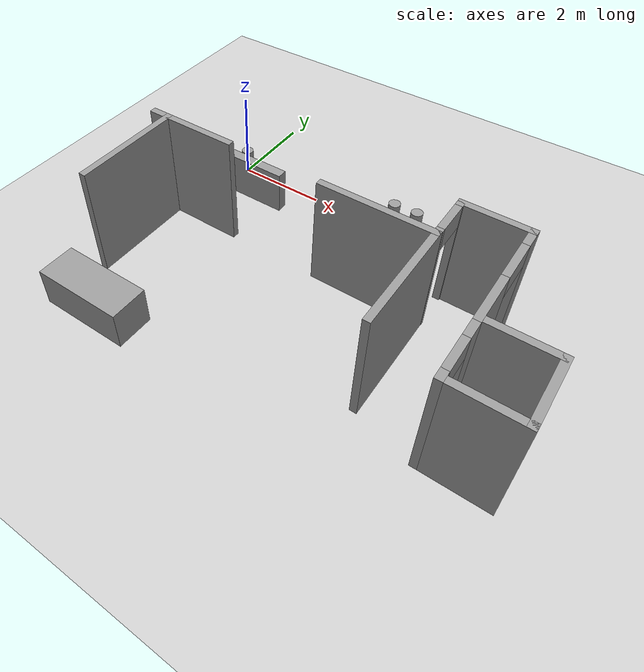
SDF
<sdf version="1.6">
 <world name="default">
  <model name="ground_plane">
   <static>1</static>
   <link name="link">
    <collision name="collision">
     <geometry><plane><normal>0 0 1</normal><size>100 100</size></plane></geometry>
     <surface><friction><ode><mu>100</mu><mu2>50</mu2></ode></friction></surface>
    </collision>
    <visual name="visual">
     <cast_shadows>0</cast_shadows>
     <geometry><plane><normal>0 0 1</normal><size>100 100</size></plane></geometry>
     <material>
      <script><uri>file://media/materials/scripts/gazebo.material</uri><name>Gazebo/Grey</name></script>
     </material>
    </visual>
   </link>
  </model>
  <model name="cma_parede_t">
   <pose>0.159955 -3.24016 0 0 -0 0</pose>
   <link name="Wall_15">
    <collision name="Wall_15_Collision">
     <geometry><box><size>2.5 0.15 2.5</size></box></geometry>
     <pose>0 0 1.25 0 -0 0</pose>
    </collision>
    <visual name="Wall_15_Visual">
     <pose>0 0 1.25 0 -0 0</pose>
     <geometry><box><size>2.5 0.15 2.5</size></box></geometry>
     <material>
      <script><uri>file://media/materials/scripts/gazebo.material</uri><name>Gazebo/Grey</name></script>
      <ambient>1 1 1 1</ambient>
     </material>
    </visual>
    <pose>-0.625 0 0 0 -0 1.5708</pose>
   </link>
   <link name="Wall_16">
    <collision name="Wall_16_Collision">
     <geometry><box><size>0.5 0.15 2.5</size></box></geometry>
     <pose>0 0 1.25 0 -0 0</pose>
    </collision>
    <visual name="Wall_16_Visual">
     <pose>0 0 1.25 0 -0 0</pose>
     <geometry><box><size>0.5 0.15 2.5</size></box></geometry>
     <material>
      <script><uri>file://media/materials/scripts/gazebo.material</uri><name>Gazebo/Grey</name></script>
      <ambient>1 1 1 1</ambient>
     </material>
    </visual>
    <pose>-0.8 1.175 0 0 -0 3.14159</pose>
   </link>
   <link name="Wall_18">
    <collision name="Wall_18_Collision">
     <geometry><box><size>1.75 0.15 2.5</size></box></geometry>
     <pose>0 0 1.25 0 -0 0</pose>
    </collision>
    <visual name="Wall_18_Visual">
     <pose>0 0 1.25 0 -0 0</pose>
     <geometry><box><size>1.75 0.15 2.5</size></box></geometry>
     <material>
      <script><uri>file://media/materials/scripts/gazebo.material</uri><name>Gazebo/Grey</name></script>
      <ambient>1 1 1 1</ambient>
     </material>
    </visual>
    <pose>0.175 1.175 0 0 -0 0</pose>
   </link>
   <static>1</static>
  </model>
  <model name="cma_lavabo">
   <pose>7.72297 -4.09302 0 0 -0 0</pose>
   <link name="Wall_4">
    <pose>-0.675 0 0 0 -0 1.5708</pose>
    <visual name="Wall_4_Visual_0">
     <pose>-0.635 0 1.25 0 -0 0</pose>
     <geometry><box><size>0.23 0.15 2.5</size></box></geometry>
     <material>
      <script><uri>file://media/materials/scripts/gazebo.material</uri><name>Gazebo/Grey</name></script>
      <ambient>1 1 1 1</ambient>
     </material>
    </visual>
    <collision name="Wall_4_Collision_0">
     <geometry><box><size>0.23 0.15 2.5</size></box></geometry>
     <pose>-0.635 0 1.25 0 -0 0</pose>
    </collision>
    <visual name="Wall_4_Visual_1">
     <pose>0.48 0 1.25 0 -0 0</pose>
     <geometry><box><size>0.54 0.15 2.5</size></box></geometry>
     <material>
      <script><uri>file://media/materials/scripts/gazebo.material</uri><name>Gazebo/Grey</name></script>
      <ambient>1 1 1 1</ambient>
     </material>
    </visual>
    <collision name="Wall_4_Collision_1">
     <geometry><box><size>0.54 0.15 2.5</size></box></geometry>
     <pose>0.48 0 1.25 0 -0 0</pose>
    </collision>
    <visual name="Wall_4_Visual_2">
     <pose>-0.155 0 2.25 0 -0 0</pose>
     <geometry><box><size>0.73 0.15 0.5</size></box></geometry>
     <material>
      <script><uri>file://media/materials/scripts/gazebo.material</uri><name>Gazebo/Grey</name></script>
      <ambient>1 1 1 1</ambient>
     </material>
    </visual>
    <collision name="Wall_4_Collision_2">
     <geometry><box><size>0.73 0.15 0.5</size></box></geometry>
     <pose>-0.155 0 2.25 0 -0 0</pose>
    </collision>
   </link>
   <link name="Wall_5">
    <collision name="Wall_5_Collision">
     <geometry><box><size>1.5 0.15 2.5</size></box></geometry>
     <pose>0 0 1.25 0 -0 0</pose>
    </collision>
    <visual name="Wall_5_Visual">
     <pose>0 0 1.25 0 -0 0</pose>
     <geometry><box><size>1.5 0.15 2.5</size></box></geometry>
     <material>
      <script><uri>file://media/materials/scripts/gazebo.material</uri><name>Gazebo/Grey</name></script>
      <ambient>1 1 1 1</ambient>
     </material>
    </visual>
    <pose>0 0.675 0 0 -0 0</pose>
   </link>
   <link name="Wall_6">
    <collision name="Wall_6_Collision">
     <geometry><box><size>1.5 0.15 2.5</size></box></geometry>
     <pose>0 0 1.25 0 -0 0</pose>
    </collision>
    <visual name="Wall_6_Visual">
     <pose>0 0 1.25 0 -0 0</pose>
     <geometry><box><size>1.5 0.15 2.5</size></box></geometry>
     <material>
      <script><uri>file://media/materials/scripts/gazebo.material</uri><name>Gazebo/Grey</name></script>
      <ambient>1 1 1 1</ambient>
     </material>
    </visual>
    <pose>0.675 0 0 0 0 -1.5708</pose>
   </link>
   <link name="Wall_7">
    <collision name="Wall_7_Collision">
     <geometry><box><size>1.5 0.15 2.5</size></box></geometry>
     <pose>0 0 1.25 0 -0 0</pose>
    </collision>
    <visual name="Wall_7_Visual">
     <pose>0 0 1.25 0 -0 0</pose>
     <geometry><box><size>1.5 0.15 2.5</size></box></geometry>
     <material>
      <script><uri>file://media/materials/scripts/gazebo.material</uri><name>Gazebo/Grey</name></script>
      <ambient>1 1 1 1</ambient>
     </material>
    </visual>
    <pose>0 -0.675 0 0 -0 3.14159</pose>
   </link>
   <static>1</static>
  </model>
  <model name="cma_L2">
   <pose>4.51683 -3.24587 0 0 -0 0</pose>
   <link name="Wall_10">
    <collision name="Wall_10_Collision">
     <geometry><box><size>2.5 0.15 2.5</size></box></geometry>
     <pose>0 0 1.25 0 -0 0</pose>
    </collision>
    <visual name="Wall_10_Visual">
     <pose>0 0 1.25 0 -0 0</pose>
     <geometry><box><size>2.5 0.15 2.5</size></box></geometry>
     <material>
      <script><uri>file://media/materials/scripts/gazebo.material</uri><name>Gazebo/Grey</name></script>
      <ambient>1 1 1 1</ambient>
     </material>
    </visual>
    <pose>1.175 0 0 0 0 -1.5708</pose>
   </link>
   <link name="Wall_9">
    <collision name="Wall_9_Collision">
     <geometry><box><size>2.5 0.15 2.5</size></box></geometry>
     <pose>0 0 1.25 0 -0 0</pose>
    </collision>
    <visual name="Wall_9_Visual">
     <pose>0 0 1.25 0 -0 0</pose>
     <geometry><box><size>2.5 0.15 2.5</size></box></geometry>
     <material>
      <script><uri>file://media/materials/scripts/gazebo.material</uri><name>Gazebo/Grey</name></script>
      <ambient>1 1 1 1</ambient>
     </material>
    </visual>
    <pose>0 1.175 0 0 -0 0</pose>
   </link>
   <static>1</static>
  </model>
  <model name="cma_L3">
   <pose>6.37221 -2.26022 0 0 -0 0</pose>
   <link name="Wall_12">
    <pose>-0.675 0.75 0 0 -0 1.5708</pose>
    <visual name="Wall_12_Visual_0">
     <pose>-0.46 0 1.25 0 -0 0</pose>
     <geometry><box><size>0.08 0.15 2.5</size></box></geometry>
     <material>
      <script><uri>file://media/materials/scripts/gazebo.material</uri><name>Gazebo/Grey</name></script>
      <ambient>1 1 1 1</ambient>
     </material>
    </visual>
    <collision name="Wall_12_Collision_0">
     <geometry><box><size>0.08 0.15 2.5</size></box></geometry>
     <pose>-0.46 0 1.25 0 -0 0</pose>
    </collision>
    <visual name="Wall_12_Visual_1">
     <pose>0.405 0 1.25 0 -0 0</pose>
     <geometry><box><size>0.19 0.15 2.5</size></box></geometry>
     <material>
      <script><uri>file://media/materials/scripts/gazebo.material</uri><name>Gazebo/Grey</name></script>
      <ambient>1 1 1 1</ambient>
     </material>
    </visual>
    <collision name="Wall_12_Collision_1">
     <geometry><box><size>0.19 0.15 2.5</size></box></geometry>
     <pose>0.405 0 1.25 0 -0 0</pose>
    </collision>
    <visual name="Wall_12_Visual_2">
     <pose>-0.055 0 2.25 0 -0 0</pose>
     <geometry><box><size>0.73 0.15 0.5</size></box></geometry>
     <material>
      <script><uri>file://media/materials/scripts/gazebo.material</uri><name>Gazebo/Grey</name></script>
      <ambient>1 1 1 1</ambient>
     </material>
    </visual>
    <collision name="Wall_12_Collision_2">
     <geometry><box><size>0.73 0.15 0.5</size></box></geometry>
     <pose>-0.055 0 2.25 0 -0 0</pose>
    </collision>
   </link>
   <link name="Wall_13">
    <collision name="Wall_13_Collision">
     <geometry><box><size>1.5 0.15 2.5</size></box></geometry>
     <pose>0 0 1.25 0 -0 0</pose>
    </collision>
    <visual name="Wall_13_Visual">
     <pose>0 0 1.25 0 -0 0</pose>
     <geometry><box><size>1.5 0.15 2.5</size></box></geometry>
     <material>
      <script><uri>file://media/materials/scripts/gazebo.material</uri><name>Gazebo/Grey</name></script>
      <ambient>1 1 1 1</ambient>
     </material>
    </visual>
    <pose>0 1.175 0 0 -0 0</pose>
   </link>
   <link name="Wall_14">
    <pose>0.675 0 0 0 0 -1.5708</pose>
    <visual name="Wall_14_Visual_0">
     <pose>-1.0175 0 1.25 0 -0 0</pose>
     <geometry><box><size>0.465 0.15 2.5</size></box></geometry>
     <material>
      <script><uri>file://media/materials/scripts/gazebo.material</uri><name>Gazebo/Grey</name></script>
      <ambient>1 1 1 1</ambient>
     </material>
    </visual>
    <collision name="Wall_14_Collision_0">
     <geometry><box><size>0.465 0.15 2.5</size></box></geometry>
     <pose>-1.0175 0 1.25 0 -0 0</pose>
    </collision>
    <visual name="Wall_14_Visual_1">
     <pose>0.6825 0 1.25 0 -0 0</pose>
     <geometry><box><size>1.135 0.15 2.5</size></box></geometry>
     <material>
      <script><uri>file://media/materials/scripts/gazebo.material</uri><name>Gazebo/Grey</name></script>
      <ambient>1 1 1 1</ambient>
     </material>
    </visual>
    <collision name="Wall_14_Collision_1">
     <geometry><box><size>1.135 0.15 2.5</size></box></geometry>
     <pose>0.6825 0 1.25 0 -0 0</pose>
    </collision>
    <visual name="Wall_14_Visual_2">
     <pose>-0.335 0 2.25 0 -0 0</pose>
     <geometry><box><size>0.9 0.15 0.5</size></box></geometry>
     <material>
      <script><uri>file://media/materials/scripts/gazebo.material</uri><name>Gazebo/Grey</name></script>
      <ambient>1 1 1 1</ambient>
     </material>
    </visual>
    <collision name="Wall_14_Collision_2">
     <geometry><box><size>0.9 0.15 0.5</size></box></geometry>
     <pose>-0.335 0 2.25 0 -0 0</pose>
    </collision>
   </link>
   <static>1</static>
  </model>
  <model name="cma_armario">
   <link name="link_0">
    <pose>1.32157 0.885178 0.5 0 -0 0</pose>
    <inertial>
     <mass>0.402376</mass>
     <inertia>
      <ixx>0.0353686</ixx>
      <ixy>0</ixy>
      <ixz>0</ixz>
      <iyy>0.132616</iyy>
      <iyz>0</iyz>
      <izz>0.100922</izz>
     </inertia>
    </inertial>
    <visual name="visual">
     <geometry><box><size>1.71877 0.234069 1</size></box></geometry>
     <material>
      <lighting>1</lighting>
      <script><uri>file://media/materials/scripts/gazebo.material</uri><name>Gazebo/Grey</name></script>
      <ambient>0.3 0.3 0.3 1</ambient>
      <diffuse>0.7 0.7 0.7 1</diffuse>
      <specular>0.01 0.01 0.01 1</specular>
      <emissive>0 0 0 1</emissive>
     </material>
    </visual>
    <collision name="collision">
     <geometry><box><size>1.71877 0.234069 1</size></box></geometry>
     <surface>
      <friction>
       <ode><mu>1</mu><mu2>1</mu2><fdir1>0 0 0</fdir1><slip1>0</slip1><slip2>0</slip2></ode>
       <torsional>
        <coefficient>1</coefficient>
        <patch_radius>0</patch_radius>
        <surface_radius>0</surface_radius>
        <use_patch_radius>1</use_patch_radius>
        <ode><slip>0</slip></ode>
       </torsional>
      </friction>
      <bounce><restitution_coefficient>0</restitution_coefficient><threshold>1e+06</threshold></bounce>
      <contact>
       <collide_without_contact>0</collide_without_contact>
       <collide_without_contact_bitmask>1</collide_without_contact_bitmask>
       <collide_bitmask>1</collide_bitmask>
       <ode>
        <soft_cfm>0</soft_cfm>
        <soft_erp>0.2</soft_erp>
        <kp>1e+13</kp>
        <kd>1</kd>
        <max_vel>0.01</max_vel>
        <min_depth>0</min_depth>
       </ode>
       <bullet>
        <split_impulse>1</split_impulse>
        <split_impulse_penetration_threshold>-0.01</split_impulse_penetration_threshold>
        <soft_cfm>0</soft_cfm>
        <soft_erp>0.2</soft_erp>
        <kp>1e+13</kp>
        <kd>1</kd>
       </bullet>
      </contact>
     </surface>
    </collision>
   </link>
   <static>0</static>
   <pose>-0.670301 -1.58199 0 0 0 -3.2e-05</pose>
  </model>
  <model name="cma_lixo">
   <link name="link_1">
    <pose>0.882962 1.81586 0.5 0 -0 0</pose>
    <inertial>
     <mass>0.0687644</mass>
     <inertia>
      <ixx>0.00602588</ixx>
      <ixy>0</ixy>
      <ixz>0</ixz>
      <iyy>0.00602588</iyy>
      <iyz>0</iyz>
      <izz>0.000591068</izz>
     </inertia>
    </inertial>
    <visual name="visual">
     <geometry><cylinder><radius>0.131112</radius><length>1</length></cylinder></geometry>
     <material>
      <lighting>1</lighting>
      <script><uri>file://media/materials/scripts/gazebo.material</uri><name>Gazebo/Grey</name></script>
      <ambient>0.3 0.3 0.3 1</ambient>
      <diffuse>0.7 0.7 0.7 1</diffuse>
      <specular>0.01 0.01 0.01 1</specular>
      <emissive>0 0 0 1</emissive>
     </material>
    </visual>
    <collision name="collision">
     <geometry><cylinder><radius>0.131112</radius><length>1</length></cylinder></geometry>
     <surface>
      <friction>
       <ode><mu>1</mu><mu2>1</mu2><fdir1>0 0 0</fdir1><slip1>0</slip1><slip2>0</slip2></ode>
       <torsional>
        <coefficient>1</coefficient>
        <patch_radius>0</patch_radius>
        <surface_radius>0</surface_radius>
        <use_patch_radius>1</use_patch_radius>
        <ode><slip>0</slip></ode>
       </torsional>
      </friction>
      <bounce><restitution_coefficient>0</restitution_coefficient><threshold>1e+06</threshold></bounce>
      <contact>
       <collide_without_contact>0</collide_without_contact>
       <collide_without_contact_bitmask>1</collide_without_contact_bitmask>
       <collide_bitmask>1</collide_bitmask>
       <ode>
        <soft_cfm>0</soft_cfm>
        <soft_erp>0.2</soft_erp>
        <kp>1e+13</kp>
        <kd>1</kd>
        <max_vel>0.01</max_vel>
        <min_depth>0</min_depth>
       </ode>
       <bullet>
        <split_impulse>1</split_impulse>
        <split_impulse_penetration_threshold>-0.01</split_impulse_penetration_threshold>
        <soft_cfm>0</soft_cfm>
        <soft_erp>0.2</soft_erp>
        <kp>1e+13</kp>
        <kd>1</kd>
       </bullet>
      </contact>
     </surface>
    </collision>
   </link>
   <static>0</static>
   <pose>-1.35785 -1.52544 -5e-06 0 0 -0.543097</pose>
  </model>
  <model name="cma_cama_s">
   <link name="link_0">
    <pose>-0 2e-06 0 0 -0 0</pose>
    <inertial>
     <mass>1.44546</mass>
     <inertia>
      <ixx>0.173816</ixx>
      <ixy>0</ixy>
      <ixz>0</ixz>
      <iyy>0.575223</iyy>
      <iyz>0</iyz>
      <izz>0.56746</izz>
     </inertia>
    </inertial>
    <visual name="visual">
     <geometry><box><size>2.0054 0.830227 0.868163</size></box></geometry>
     <material>
      <lighting>1</lighting>
      <script><uri>file://media/materials/scripts/gazebo.material</uri><name>Gazebo/Grey</name></script>
      <ambient>0.3 0.3 0.3 1</ambient>
      <diffuse>0.7 0.7 0.7 1</diffuse>
      <specular>0.01 0.01 0.01 1</specular>
      <emissive>0 0 0 1</emissive>
     </material>
    </visual>
    <collision name="collision">
     <geometry><box><size>2.0054 0.830227 0.868163</size></box></geometry>
     <surface>
      <friction>
       <ode><mu>1</mu><mu2>1</mu2><fdir1>0 0 0</fdir1><slip1>0</slip1><slip2>0</slip2></ode>
       <torsional>
        <coefficient>1</coefficient>
        <patch_radius>0</patch_radius>
        <surface_radius>0</surface_radius>
        <use_patch_radius>1</use_patch_radius>
        <ode><slip>0</slip></ode>
       </torsional>
      </friction>
      <bounce><restitution_coefficient>0</restitution_coefficient><threshold>1e+06</threshold></bounce>
      <contact>
       <collide_without_contact>0</collide_without_contact>
       <collide_without_contact_bitmask>1</collide_without_contact_bitmask>
       <collide_bitmask>1</collide_bitmask>
       <ode>
        <soft_cfm>0</soft_cfm>
        <soft_erp>0.2</soft_erp>
        <kp>1e+13</kp>
        <kd>1</kd>
        <max_vel>0.01</max_vel>
        <min_depth>0</min_depth>
       </ode>
       <bullet>
        <split_impulse>1</split_impulse>
        <split_impulse_penetration_threshold>-0.01</split_impulse_penetration_threshold>
        <soft_cfm>0</soft_cfm>
        <soft_erp>0.2</soft_erp>
        <kp>1e+13</kp>
        <kd>1</kd>
       </bullet>
      </contact>
     </surface>
    </collision>
   </link>
   <static>0</static>
   <pose>0.313462 -5.42014 0.434083 4e-06 -0 -2e-06</pose>
  </model>
  <model name="cma_barra_70cmV">
   <link name="link_2">
    <pose>0.076239 -1e-06 0 0 0 -1.5756</pose>
    <inertial>
     <mass>0.0631368</mass>
     <inertia>
      <ixx>0.00106542</ixx>
      <ixy>0</ixy>
      <ixz>0</ixz>
      <iyy>0.00284727</iyy>
      <iyz>0</iyz>
      <izz>0.0025815</izz>
     </inertia>
    </inertial>
    <visual name="visual">
     <geometry><box><size>0.643938 0.275728 0.355737</size></box></geometry>
     <material>
      <lighting>1</lighting>
      <script><uri>file://media/materials/scripts/gazebo.material</uri><name>Gazebo/Grey</name></script>
      <ambient>0.3 0.3 0.3 1</ambient>
      <diffuse>0.7 0.7 0.7 1</diffuse>
      <specular>0.01 0.01 0.01 1</specular>
      <emissive>0 0 0 1</emissive>
     </material>
    </visual>
    <collision name="collision">
     <geometry><box><size>0.643938 0.275728 0.355737</size></box></geometry>
     <surface>
      <friction>
       <ode><mu>1</mu><mu2>1</mu2><fdir1>0 0 0</fdir1><slip1>0</slip1><slip2>0</slip2></ode>
       <torsional>
        <coefficient>1</coefficient>
        <patch_radius>0</patch_radius>
        <surface_radius>0</surface_radius>
        <use_patch_radius>1</use_patch_radius>
        <ode><slip>0</slip></ode>
       </torsional>
      </friction>
      <bounce><restitution_coefficient>0</restitution_coefficient><threshold>1e+06</threshold></bounce>
      <contact>
       <collide_without_contact>0</collide_without_contact>
       <collide_without_contact_bitmask>1</collide_without_contact_bitmask>
       <collide_bitmask>1</collide_bitmask>
       <ode>
        <soft_cfm>0</soft_cfm>
        <soft_erp>0.2</soft_erp>
        <kp>1e+13</kp>
        <kd>1</kd>
        <max_vel>0.01</max_vel>
        <min_depth>0</min_depth>
       </ode>
       <bullet>
        <split_impulse>1</split_impulse>
        <split_impulse_penetration_threshold>-0.01</split_impulse_penetration_threshold>
        <soft_cfm>0</soft_cfm>
        <soft_erp>0.2</soft_erp>
        <kp>1e+13</kp>
        <kd>1</kd>
       </bullet>
      </contact>
     </surface>
    </collision>
   </link>
   <static>0</static>
   <pose>7.2952 -1.9239 0.177863 3e-06 -2.2e-05 -0.002234</pose>
  </model>
  <model name="cma_lixo_4">
   <link name="link_1">
    <pose>0.882962 1.81586 0.5 0 -0 0</pose>
    <inertial>
     <mass>0.0687644</mass>
     <inertia>
      <ixx>0.00602588</ixx>
      <ixy>0</ixy>
      <ixz>0</ixz>
      <iyy>0.00602588</iyy>
      <iyz>0</iyz>
      <izz>0.000591068</izz>
     </inertia>
    </inertial>
    <visual name="visual">
     <geometry><cylinder><radius>0.131112</radius><length>1</length></cylinder></geometry>
     <material>
      <lighting>1</lighting>
      <script><uri>file://media/materials/scripts/gazebo.material</uri><name>Gazebo/Grey</name></script>
      <ambient>0.3 0.3 0.3 1</ambient>
      <diffuse>0.7 0.7 0.7 1</diffuse>
      <specular>0.01 0.01 0.01 1</specular>
      <emissive>0 0 0 1</emissive>
     </material>
    </visual>
    <collision name="collision">
     <geometry><cylinder><radius>0.131112</radius><length>1</length></cylinder></geometry>
     <surface>
      <friction>
       <ode><mu>1</mu><mu2>1</mu2><fdir1>0 0 0</fdir1><slip1>0</slip1><slip2>0</slip2></ode>
       <torsional>
        <coefficient>1</coefficient>
        <patch_radius>0</patch_radius>
        <surface_radius>0</surface_radius>
        <use_patch_radius>1</use_patch_radius>
        <ode><slip>0</slip></ode>
       </torsional>
      </friction>
      <bounce><restitution_coefficient>0</restitution_coefficient><threshold>1e+06</threshold></bounce>
      <contact>
       <collide_without_contact>0</collide_without_contact>
       <collide_without_contact_bitmask>1</collide_without_contact_bitmask>
       <collide_bitmask>1</collide_bitmask>
       <ode>
        <soft_cfm>0</soft_cfm>
        <soft_erp>0.2</soft_erp>
        <kp>1e+13</kp>
        <kd>1</kd>
        <max_vel>0.01</max_vel>
        <min_depth>0</min_depth>
       </ode>
       <bullet>
        <split_impulse>1</split_impulse>
        <split_impulse_penetration_threshold>-0.01</split_impulse_penetration_threshold>
        <soft_cfm>0</soft_cfm>
        <soft_erp>0.2</soft_erp>
        <kp>1e+13</kp>
        <kd>1</kd>
       </bullet>
      </contact>
     </surface>
    </collision>
   </link>
   <static>0</static>
   <pose>3.1651 -1.9552 -9e-06 0 -0 0</pose>
  </model>
  <model name="cma_lixo_5">
   <link name="link_1">
    <pose>0.882962 1.81586 0.5 0 -0 0</pose>
    <inertial>
     <mass>0.0687644</mass>
     <inertia>
      <ixx>0.00602588</ixx>
      <ixy>0</ixy>
      <ixz>0</ixz>
      <iyy>0.00602588</iyy>
      <iyz>0</iyz>
      <izz>0.000591068</izz>
     </inertia>
    </inertial>
    <visual name="visual">
     <geometry><cylinder><radius>0.131112</radius><length>1</length></cylinder></geometry>
     <material>
      <lighting>1</lighting>
      <script><uri>file://media/materials/scripts/gazebo.material</uri><name>Gazebo/Grey</name></script>
      <ambient>0.3 0.3 0.3 1</ambient>
      <diffuse>0.7 0.7 0.7 1</diffuse>
      <specular>0.01 0.01 0.01 1</specular>
      <emissive>0 0 0 1</emissive>
     </material>
    </visual>
    <collision name="collision">
     <geometry><cylinder><radius>0.131112</radius><length>1</length></cylinder></geometry>
     <surface>
      <friction>
       <ode><mu>1</mu><mu2>1</mu2><fdir1>0 0 0</fdir1><slip1>0</slip1><slip2>0</slip2></ode>
       <torsional>
        <coefficient>1</coefficient>
        <patch_radius>0</patch_radius>
        <surface_radius>0</surface_radius>
        <use_patch_radius>1</use_patch_radius>
        <ode><slip>0</slip></ode>
       </torsional>
      </friction>
      <bounce><restitution_coefficient>0</restitution_coefficient><threshold>1e+06</threshold></bounce>
      <contact>
       <collide_without_contact>0</collide_without_contact>
       <collide_without_contact_bitmask>1</collide_without_contact_bitmask>
       <collide_bitmask>1</collide_bitmask>
       <ode>
        <soft_cfm>0</soft_cfm>
        <soft_erp>0.2</soft_erp>
        <kp>1e+13</kp>
        <kd>1</kd>
        <max_vel>0.01</max_vel>
        <min_depth>0</min_depth>
       </ode>
       <bullet>
        <split_impulse>1</split_impulse>
        <split_impulse_penetration_threshold>-0.01</split_impulse_penetration_threshold>
        <soft_cfm>0</soft_cfm>
        <soft_erp>0.2</soft_erp>
        <kp>1e+13</kp>
        <kd>1</kd>
       </bullet>
      </contact>
     </surface>
    </collision>
   </link>
   <static>0</static>
   <pose>3.69005 -1.94018 -9e-06 0 -0 0</pose>
  </model>
 </world>
</sdf>
